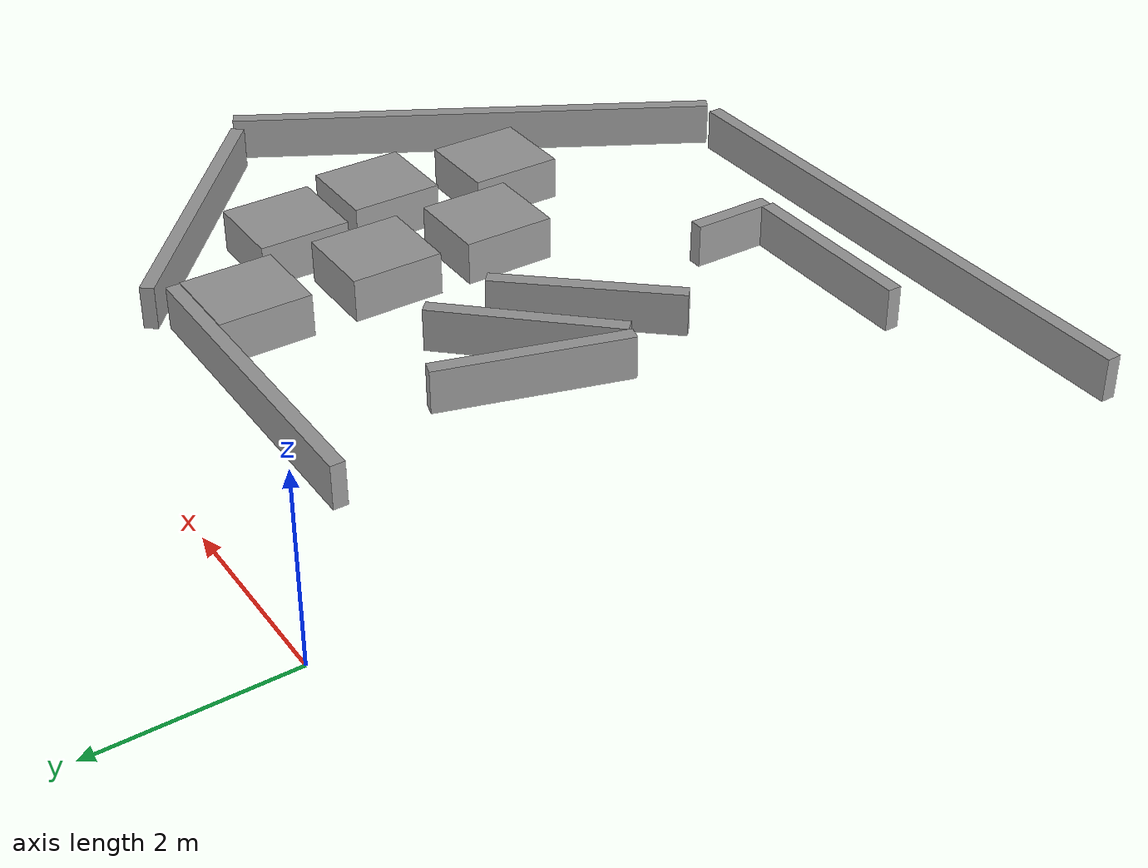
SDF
<sdf version="1.6">
 <model name="ws18_amr_master">
  <link name="link_0_clone_1_clone_clone_0">
   <pose>7.62136 -6.28425 -0 -0 -0 -0.508443</pose>
   <inertial>
    <mass>0.4862</mass>
    <inertia><ixx>1.4177</ixx><ixy>0</ixy><ixz>0</ixz><iyy>0.0114507</iyy><iyz>0</iyz><izz>1.40841</izz></inertia>
   </inertial>
   <visual name="visual">
    <geometry><box><size>0.163038 5.89361 0.505999</size></box></geometry>
    <material>
     <lighting>1</lighting>
     <script><uri>file://media/materials/scripts/gazebo.material</uri><name>Gazebo/Grey</name></script>
     <ambient>0.3 0.3 0.3 1</ambient>
     <diffuse>0.7 0.7 0.7 1</diffuse>
     <specular>0.01 0.01 0.01 1</specular>
     <emissive>0 0 0 1</emissive>
     <shader type="pixel"/>
    </material>
   </visual>
   <collision name="collision">
    <geometry><box><size>0.163038 5.89361 0.505999</size></box></geometry>
    <surface>
     <friction>
      <ode><mu>1</mu><mu2>1</mu2><fdir1>0 0 0</fdir1><slip1>0</slip1><slip2>0</slip2></ode>
      <torsional>
       <coefficient>1</coefficient>
       <patch_radius>0</patch_radius>
       <surface_radius>0</surface_radius>
       <use_patch_radius>1</use_patch_radius>
       <ode><slip>0</slip></ode>
      </torsional>
     </friction>
     <bounce><restitution_coefficient>0</restitution_coefficient><threshold>1e+06</threshold></bounce>
     <contact>
      <collide_without_contact>0</collide_without_contact>
      <collide_without_contact_bitmask>1</collide_without_contact_bitmask>
      <collide_bitmask>1</collide_bitmask>
      <ode>
       <soft_cfm>0</soft_cfm>
       <soft_erp>0.2</soft_erp>
       <kp>1e+13</kp>
       <kd>1</kd>
       <max_vel>0.01</max_vel>
       <min_depth>0</min_depth>
      </ode>
      <bullet>
       <split_impulse>1</split_impulse>
       <split_impulse_penetration_threshold>-0.01</split_impulse_penetration_threshold>
       <soft_cfm>0</soft_cfm>
       <soft_erp>0.2</soft_erp>
       <kp>1e+13</kp>
       <kd>1</kd>
      </bullet>
     </contact>
    </surface>
   </collision>
  </link>
  <link name="link_0_clone_1_clone_clone_clone">
   <pose>7.32668 -2.40651 -0 0 0 -2.27698</pose>
   <inertial>
    <mass>0.311198</mass>
    <inertia>
     <ixx>0.375669</ixx>
     <ixy>0</ixy>
     <ixz>0</ixz>
     <iyy>0.00732913</iyy>
     <iyz>0</iyz>
     <izz>0.369718</izz>
    </inertia>
   </inertial>
   <visual name="visual">
    <geometry><box><size>0.163038 3.77227 0.505999</size></box></geometry>
    <material>
     <lighting>1</lighting>
     <script><uri>file://media/materials/scripts/gazebo.material</uri><name>Gazebo/Grey</name></script>
     <ambient>0.3 0.3 0.3 1</ambient>
     <diffuse>0.7 0.7 0.7 1</diffuse>
     <specular>0.01 0.01 0.01 1</specular>
     <emissive>0 0 0 1</emissive>
     <shader type="pixel"/>
    </material>
   </visual>
   <collision name="collision">
    <geometry><box><size>0.163038 3.77227 0.505999</size></box></geometry>
    <surface>
     <friction>
      <ode><mu>1</mu><mu2>1</mu2><fdir1>0 0 0</fdir1><slip1>0</slip1><slip2>0</slip2></ode>
      <torsional>
       <coefficient>1</coefficient>
       <patch_radius>0</patch_radius>
       <surface_radius>0</surface_radius>
       <use_patch_radius>1</use_patch_radius>
       <ode><slip>0</slip></ode>
      </torsional>
     </friction>
     <bounce><restitution_coefficient>0</restitution_coefficient><threshold>1e+06</threshold></bounce>
     <contact>
      <collide_without_contact>0</collide_without_contact>
      <collide_without_contact_bitmask>1</collide_without_contact_bitmask>
      <collide_bitmask>1</collide_bitmask>
      <ode>
       <soft_cfm>0</soft_cfm>
       <soft_erp>0.2</soft_erp>
       <kp>1e+13</kp>
       <kd>1</kd>
       <max_vel>0.01</max_vel>
       <min_depth>0</min_depth>
      </ode>
      <bullet>
       <split_impulse>1</split_impulse>
       <split_impulse_penetration_threshold>-0.01</split_impulse_penetration_threshold>
       <soft_cfm>0</soft_cfm>
       <soft_erp>0.2</soft_erp>
       <kp>1e+13</kp>
       <kd>1</kd>
      </bullet>
     </contact>
    </surface>
   </collision>
  </link>
  <link name="link_0_clone_2_clone_0">
   <pose>3.79092 -7.37969 -0 0 -0 0</pose>
   <inertial>
    <mass>0.0824965</mass>
    <inertia>
     <ixx>0.00863488</ixx>
     <ixy>0</ixy>
     <ixz>0</ixz>
     <iyy>0.0019429</iyy>
     <iyz>0</iyz>
     <izz>0.00705746</izz>
    </inertia>
   </inertial>
   <visual name="visual">
    <geometry><box><size>0.163038 1 0.505999</size></box></geometry>
    <material>
     <lighting>1</lighting>
     <script><uri>file://media/materials/scripts/gazebo.material</uri><name>Gazebo/Grey</name></script>
     <ambient>0.3 0.3 0.3 1</ambient>
     <diffuse>0.7 0.7 0.7 1</diffuse>
     <specular>0.01 0.01 0.01 1</specular>
     <emissive>0 0 0 1</emissive>
     <shader type="pixel"/>
    </material>
   </visual>
   <collision name="collision">
    <geometry><box><size>0.163038 1 0.505999</size></box></geometry>
    <surface>
     <friction>
      <ode><mu>1</mu><mu2>1</mu2><fdir1>0 0 0</fdir1><slip1>0</slip1><slip2>0</slip2></ode>
      <torsional>
       <coefficient>1</coefficient>
       <patch_radius>0</patch_radius>
       <surface_radius>0</surface_radius>
       <use_patch_radius>1</use_patch_radius>
       <ode><slip>0</slip></ode>
      </torsional>
     </friction>
     <bounce><restitution_coefficient>0</restitution_coefficient><threshold>1e+06</threshold></bounce>
     <contact>
      <collide_without_contact>0</collide_without_contact>
      <collide_without_contact_bitmask>1</collide_without_contact_bitmask>
      <collide_bitmask>1</collide_bitmask>
      <ode>
       <soft_cfm>0</soft_cfm>
       <soft_erp>0.2</soft_erp>
       <kp>1e+13</kp>
       <kd>1</kd>
       <max_vel>0.01</max_vel>
       <min_depth>0</min_depth>
      </ode>
      <bullet>
       <split_impulse>1</split_impulse>
       <split_impulse_penetration_threshold>-0.01</split_impulse_penetration_threshold>
       <soft_cfm>0</soft_cfm>
       <soft_erp>0.2</soft_erp>
       <kp>1e+13</kp>
       <kd>1</kd>
      </bullet>
     </contact>
    </surface>
   </collision>
  </link>
  <link name="link_0_clone_clone_1_clone">
   <pose>2.64933 -8.78868 -8.7e-05 0 0.012172 1.55915</pose>
   <inertial>
    <mass>0.549374</mass>
    <inertia>
     <ixx>2.04199</ixx>
     <ixy>0</ixy>
     <ixz>0</ixz>
     <iyy>0.0129385</iyy>
     <iyz>0</iyz>
     <izz>2.03149</izz>
    </inertia>
   </inertial>
   <visual name="visual">
    <geometry><box><size>0.163038 6.65939 0.505999</size></box></geometry>
    <material>
     <lighting>1</lighting>
     <script><uri>file://media/materials/scripts/gazebo.material</uri><name>Gazebo/Grey</name></script>
     <ambient>0.3 0.3 0.3 1</ambient>
     <diffuse>0.7 0.7 0.7 1</diffuse>
     <specular>0.01 0.01 0.01 1</specular>
     <emissive>0 0 0 1</emissive>
     <shader type="pixel"/>
    </material>
   </visual>
   <collision name="collision">
    <geometry><box><size>0.163038 6.65939 0.505999</size></box></geometry>
    <surface>
     <friction>
      <ode><mu>1</mu><mu2>1</mu2><fdir1>0 0 0</fdir1><slip1>0</slip1><slip2>0</slip2></ode>
      <torsional>
       <coefficient>1</coefficient>
       <patch_radius>0</patch_radius>
       <surface_radius>0</surface_radius>
       <use_patch_radius>1</use_patch_radius>
       <ode><slip>0</slip></ode>
      </torsional>
     </friction>
     <bounce><restitution_coefficient>0</restitution_coefficient><threshold>1e+06</threshold></bounce>
     <contact>
      <collide_without_contact>0</collide_without_contact>
      <collide_without_contact_bitmask>1</collide_without_contact_bitmask>
      <collide_bitmask>1</collide_bitmask>
      <ode>
       <soft_cfm>0</soft_cfm>
       <soft_erp>0.2</soft_erp>
       <kp>1e+13</kp>
       <kd>1</kd>
       <max_vel>0.01</max_vel>
       <min_depth>0</min_depth>
      </ode>
      <bullet>
       <split_impulse>1</split_impulse>
       <split_impulse_penetration_threshold>-0.01</split_impulse_penetration_threshold>
       <soft_cfm>0</soft_cfm>
       <soft_erp>0.2</soft_erp>
       <kp>1e+13</kp>
       <kd>1</kd>
      </bullet>
     </contact>
    </surface>
   </collision>
  </link>
  <link name="link_0_clone_clone_1_clone_0">
   <pose>3.39746 -5.13705 9.6e-05 0.009103 0.00808 2.40401</pose>
   <inertial>
    <mass>0.180006</mass>
    <inertia>
     <ixx>0.0752589</ixx>
     <ixy>0</ixy>
     <ixz>0</ixz>
     <iyy>0.00423938</iyy>
     <iyz>0</iyz>
     <izz>0.071817</izz>
    </inertia>
   </inertial>
   <visual name="visual">
    <geometry><box><size>0.163038 2.18199 0.505999</size></box></geometry>
    <material>
     <lighting>1</lighting>
     <script><uri>file://media/materials/scripts/gazebo.material</uri><name>Gazebo/Grey</name></script>
     <ambient>0.3 0.3 0.3 1</ambient>
     <diffuse>0.7 0.7 0.7 1</diffuse>
     <specular>0.01 0.01 0.01 1</specular>
     <emissive>0 0 0 1</emissive>
     <shader type="pixel"/>
    </material>
   </visual>
   <collision name="collision">
    <geometry><box><size>0.163038 2.18199 0.505999</size></box></geometry>
    <surface>
     <friction>
      <ode><mu>1</mu><mu2>1</mu2><fdir1>0 0 0</fdir1><slip1>0</slip1><slip2>0</slip2></ode>
      <torsional>
       <coefficient>1</coefficient>
       <patch_radius>0</patch_radius>
       <surface_radius>0</surface_radius>
       <use_patch_radius>1</use_patch_radius>
       <ode><slip>0</slip></ode>
      </torsional>
     </friction>
     <bounce><restitution_coefficient>0</restitution_coefficient><threshold>1e+06</threshold></bounce>
     <contact>
      <collide_without_contact>0</collide_without_contact>
      <collide_without_contact_bitmask>1</collide_without_contact_bitmask>
      <collide_bitmask>1</collide_bitmask>
      <ode>
       <soft_cfm>0</soft_cfm>
       <soft_erp>0.2</soft_erp>
       <kp>1e+13</kp>
       <kd>1</kd>
       <max_vel>0.01</max_vel>
       <min_depth>0</min_depth>
      </ode>
      <bullet>
       <split_impulse>1</split_impulse>
       <split_impulse_penetration_threshold>-0.01</split_impulse_penetration_threshold>
       <soft_cfm>0</soft_cfm>
       <soft_erp>0.2</soft_erp>
       <kp>1e+13</kp>
       <kd>1</kd>
      </bullet>
     </contact>
    </surface>
   </collision>
  </link>
  <link name="link_0_clone_clone_1_clone_1">
   <pose>3.2263 -4.25366 -8.7e-05 0.008831 0.008377 2.37089</pose>
   <inertial>
    <mass>0.180006</mass>
    <inertia>
     <ixx>0.0752589</ixx>
     <ixy>0</ixy>
     <ixz>0</ixz>
     <iyy>0.00423938</iyy>
     <iyz>0</iyz>
     <izz>0.071817</izz>
    </inertia>
   </inertial>
   <visual name="visual">
    <geometry><box><size>0.163038 2.18199 0.505999</size></box></geometry>
    <material>
     <lighting>1</lighting>
     <script><uri>file://media/materials/scripts/gazebo.material</uri><name>Gazebo/Grey</name></script>
     <ambient>0.3 0.3 0.3 1</ambient>
     <diffuse>0.7 0.7 0.7 1</diffuse>
     <specular>0.01 0.01 0.01 1</specular>
     <emissive>0 0 0 1</emissive>
     <shader type="pixel"><normal_map>__default__</normal_map></shader>
    </material>
   </visual>
   <collision name="collision">
    <geometry><box><size>0.163038 2.18199 0.505999</size></box></geometry>
    <surface>
     <friction>
      <ode><mu>1</mu><mu2>1</mu2><fdir1>0 0 0</fdir1><slip1>0</slip1><slip2>0</slip2></ode>
      <torsional>
       <coefficient>1</coefficient>
       <patch_radius>0</patch_radius>
       <surface_radius>0</surface_radius>
       <use_patch_radius>1</use_patch_radius>
       <ode><slip>0</slip></ode>
      </torsional>
     </friction>
     <bounce><restitution_coefficient>0</restitution_coefficient><threshold>1e+06</threshold></bounce>
     <contact>
      <collide_without_contact>0</collide_without_contact>
      <collide_without_contact_bitmask>1</collide_without_contact_bitmask>
      <collide_bitmask>1</collide_bitmask>
      <ode>
       <soft_cfm>0</soft_cfm>
       <soft_erp>0.2</soft_erp>
       <kp>1e+13</kp>
       <kd>1</kd>
       <max_vel>0.01</max_vel>
       <min_depth>0</min_depth>
      </ode>
      <bullet>
       <split_impulse>1</split_impulse>
       <split_impulse_penetration_threshold>-0.01</split_impulse_penetration_threshold>
       <soft_cfm>0</soft_cfm>
       <soft_erp>0.2</soft_erp>
       <kp>1e+13</kp>
       <kd>1</kd>
      </bullet>
     </contact>
    </surface>
   </collision>
  </link>
  <link name="link_0_clone_clone_1_clone_1_clone">
   <pose>2.6406 -3.9519 -0.000942 0.011674 0.003446 2.84292</pose>
   <inertial>
    <mass>0.180006</mass>
    <inertia>
     <ixx>0.0752589</ixx>
     <ixy>0</ixy>
     <ixz>0</ixz>
     <iyy>0.00423938</iyy>
     <iyz>0</iyz>
     <izz>0.071817</izz>
    </inertia>
   </inertial>
   <visual name="visual">
    <geometry><box><size>0.163038 2.18199 0.505999</size></box></geometry>
    <material>
     <lighting>1</lighting>
     <script><uri>file://media/materials/scripts/gazebo.material</uri><name>Gazebo/Grey</name></script>
     <ambient>0.3 0.3 0.3 1</ambient>
     <diffuse>0.7 0.7 0.7 1</diffuse>
     <specular>0.01 0.01 0.01 1</specular>
     <emissive>0 0 0 1</emissive>
     <shader type="pixel"><normal_map>__default__</normal_map></shader>
    </material>
   </visual>
   <collision name="collision">
    <geometry><box><size>0.163038 2.18199 0.505999</size></box></geometry>
    <surface>
     <friction>
      <ode><mu>1</mu><mu2>1</mu2><fdir1>0 0 0</fdir1><slip1>0</slip1><slip2>0</slip2></ode>
      <torsional>
       <coefficient>1</coefficient>
       <patch_radius>0</patch_radius>
       <surface_radius>0</surface_radius>
       <use_patch_radius>1</use_patch_radius>
       <ode><slip>0</slip></ode>
      </torsional>
     </friction>
     <bounce><restitution_coefficient>0</restitution_coefficient><threshold>1e+06</threshold></bounce>
     <contact>
      <collide_without_contact>0</collide_without_contact>
      <collide_without_contact_bitmask>1</collide_without_contact_bitmask>
      <collide_bitmask>1</collide_bitmask>
      <ode>
       <soft_cfm>0</soft_cfm>
       <soft_erp>0.2</soft_erp>
       <kp>1e+13</kp>
       <kd>1</kd>
       <max_vel>0.01</max_vel>
       <min_depth>0</min_depth>
      </ode>
      <bullet>
       <split_impulse>1</split_impulse>
       <split_impulse_penetration_threshold>-0.01</split_impulse_penetration_threshold>
       <soft_cfm>0</soft_cfm>
       <soft_erp>0.2</soft_erp>
       <kp>1e+13</kp>
       <kd>1</kd>
      </bullet>
     </contact>
    </surface>
   </collision>
  </link>
  <link name="link_0_clone_clone_1_clone_clone">
   <pose>3.90076 -1.41618 -8.7e-05 0 0.012172 1.55915</pose>
   <inertial>
    <mass>0.311334</mass>
    <inertia>
     <ixx>0.376156</ixx>
     <ixy>0</ixy>
     <ixz>0</ixz>
     <iyy>0.00733234</iyy>
     <iyz>0</iyz>
     <izz>0.370203</izz>
    </inertia>
   </inertial>
   <visual name="visual">
    <geometry><box><size>0.163038 3.77392 0.505999</size></box></geometry>
    <material>
     <lighting>1</lighting>
     <script><uri>file://media/materials/scripts/gazebo.material</uri><name>Gazebo/Grey</name></script>
     <ambient>0.3 0.3 0.3 1</ambient>
     <diffuse>0.7 0.7 0.7 1</diffuse>
     <specular>0.01 0.01 0.01 1</specular>
     <emissive>0 0 0 1</emissive>
     <shader type="pixel"/>
    </material>
   </visual>
   <collision name="collision">
    <geometry><box><size>0.163038 3.77392 0.505999</size></box></geometry>
    <surface>
     <friction>
      <ode><mu>1</mu><mu2>1</mu2><fdir1>0 0 0</fdir1><slip1>0</slip1><slip2>0</slip2></ode>
      <torsional>
       <coefficient>1</coefficient>
       <patch_radius>0</patch_radius>
       <surface_radius>0</surface_radius>
       <use_patch_radius>1</use_patch_radius>
       <ode><slip>0</slip></ode>
      </torsional>
     </friction>
     <bounce><restitution_coefficient>0</restitution_coefficient><threshold>1e+06</threshold></bounce>
     <contact>
      <collide_without_contact>0</collide_without_contact>
      <collide_without_contact_bitmask>1</collide_without_contact_bitmask>
      <collide_bitmask>1</collide_bitmask>
      <ode>
       <soft_cfm>0</soft_cfm>
       <soft_erp>0.2</soft_erp>
       <kp>1e+13</kp>
       <kd>1</kd>
       <max_vel>0.01</max_vel>
       <min_depth>0</min_depth>
      </ode>
      <bullet>
       <split_impulse>1</split_impulse>
       <split_impulse_penetration_threshold>-0.01</split_impulse_penetration_threshold>
       <soft_cfm>0</soft_cfm>
       <soft_erp>0.2</soft_erp>
       <kp>1e+13</kp>
       <kd>1</kd>
      </bullet>
     </contact>
    </surface>
   </collision>
  </link>
  <link name="link_0_clone_clone_2_clone">
   <pose>2.62302 -7.82667 -0.001264 0 0.012172 1.55915</pose>
   <inertial>
    <mass>0.180006</mass>
    <inertia>
     <ixx>0.0752589</ixx>
     <ixy>0</ixy>
     <ixz>0</ixz>
     <iyy>0.00423938</iyy>
     <iyz>0</iyz>
     <izz>0.071817</izz>
    </inertia>
   </inertial>
   <visual name="visual">
    <geometry><box><size>0.163038 2.18199 0.505999</size></box></geometry>
    <material>
     <lighting>1</lighting>
     <script><uri>file://media/materials/scripts/gazebo.material</uri><name>Gazebo/Grey</name></script>
     <ambient>0.3 0.3 0.3 1</ambient>
     <diffuse>0.7 0.7 0.7 1</diffuse>
     <specular>0.01 0.01 0.01 1</specular>
     <emissive>0 0 0 1</emissive>
     <shader type="pixel"/>
    </material>
   </visual>
   <collision name="collision">
    <geometry><box><size>0.163038 2.18199 0.505999</size></box></geometry>
    <surface>
     <friction>
      <ode><mu>1</mu><mu2>1</mu2><fdir1>0 0 0</fdir1><slip1>0</slip1><slip2>0</slip2></ode>
      <torsional>
       <coefficient>1</coefficient>
       <patch_radius>0</patch_radius>
       <surface_radius>0</surface_radius>
       <use_patch_radius>1</use_patch_radius>
       <ode><slip>0</slip></ode>
      </torsional>
     </friction>
     <bounce><restitution_coefficient>0</restitution_coefficient><threshold>1e+06</threshold></bounce>
     <contact>
      <collide_without_contact>0</collide_without_contact>
      <collide_without_contact_bitmask>1</collide_without_contact_bitmask>
      <collide_bitmask>1</collide_bitmask>
      <ode>
       <soft_cfm>0</soft_cfm>
       <soft_erp>0.2</soft_erp>
       <kp>1e+13</kp>
       <kd>1</kd>
       <max_vel>0.01</max_vel>
       <min_depth>0</min_depth>
      </ode>
      <bullet>
       <split_impulse>1</split_impulse>
       <split_impulse_penetration_threshold>-0.01</split_impulse_penetration_threshold>
       <soft_cfm>0</soft_cfm>
       <soft_erp>0.2</soft_erp>
       <kp>1e+13</kp>
       <kd>1</kd>
      </bullet>
     </contact>
    </surface>
   </collision>
  </link>
  <link name="link_0_clone_clone_clone_clone_clone_0">
   <pose>6.44374 -3.10496 0.018209 0 0.012172 1.55915</pose>
   <inertial>
    <mass>0.539493</mass>
    <inertia>
     <ixx>0.0564686</ixx>
     <ixy>0</ixy>
     <ixz>0</ixz>
     <iyy>0.0626183</iyy>
     <iyz>0</iyz>
     <izz>0.0960654</izz>
    </inertia>
   </inertial>
   <visual name="visual">
    <geometry><box><size>1.0662 1 0.505999</size></box></geometry>
    <material>
     <lighting>1</lighting>
     <script><uri>file://media/materials/scripts/gazebo.material</uri><name>Gazebo/Grey</name></script>
     <ambient>0.3 0.3 0.3 1</ambient>
     <diffuse>0.7 0.7 0.7 1</diffuse>
     <specular>0.01 0.01 0.01 1</specular>
     <emissive>0 0 0 1</emissive>
     <shader type="pixel"/>
    </material>
   </visual>
   <collision name="collision">
    <geometry><box><size>1.0662 1 0.505999</size></box></geometry>
    <surface>
     <friction>
      <ode><mu>1</mu><mu2>1</mu2><fdir1>0 0 0</fdir1><slip1>0</slip1><slip2>0</slip2></ode>
      <torsional>
       <coefficient>1</coefficient>
       <patch_radius>0</patch_radius>
       <surface_radius>0</surface_radius>
       <use_patch_radius>1</use_patch_radius>
       <ode><slip>0</slip></ode>
      </torsional>
     </friction>
     <bounce><restitution_coefficient>0</restitution_coefficient><threshold>1e+06</threshold></bounce>
     <contact>
      <collide_without_contact>0</collide_without_contact>
      <collide_without_contact_bitmask>1</collide_without_contact_bitmask>
      <collide_bitmask>1</collide_bitmask>
      <ode>
       <soft_cfm>0</soft_cfm>
       <soft_erp>0.2</soft_erp>
       <kp>1e+13</kp>
       <kd>1</kd>
       <max_vel>0.01</max_vel>
       <min_depth>0</min_depth>
      </ode>
      <bullet>
       <split_impulse>1</split_impulse>
       <split_impulse_penetration_threshold>-0.01</split_impulse_penetration_threshold>
       <soft_cfm>0</soft_cfm>
       <soft_erp>0.2</soft_erp>
       <kp>1e+13</kp>
       <kd>1</kd>
      </bullet>
     </contact>
    </surface>
   </collision>
  </link>
  <link name="link_0_clone_clone_clone_clone_clone_1">
   <pose>6.64074 -4.38563 0.018209 0 0.012172 1.55915</pose>
   <inertial>
    <mass>0.539493</mass>
    <inertia>
     <ixx>0.0564686</ixx>
     <ixy>0</ixy>
     <ixz>0</ixz>
     <iyy>0.0626183</iyy>
     <iyz>0</iyz>
     <izz>0.0960654</izz>
    </inertia>
   </inertial>
   <visual name="visual">
    <geometry><box><size>1.0662 1 0.505999</size></box></geometry>
    <material>
     <lighting>1</lighting>
     <script><uri>file://media/materials/scripts/gazebo.material</uri><name>Gazebo/Grey</name></script>
     <ambient>0.3 0.3 0.3 1</ambient>
     <diffuse>0.7 0.7 0.7 1</diffuse>
     <specular>0.01 0.01 0.01 1</specular>
     <emissive>0 0 0 1</emissive>
     <shader type="pixel"/>
    </material>
   </visual>
   <collision name="collision">
    <geometry><box><size>1.0662 1 0.505999</size></box></geometry>
    <surface>
     <friction>
      <ode><mu>1</mu><mu2>1</mu2><fdir1>0 0 0</fdir1><slip1>0</slip1><slip2>0</slip2></ode>
      <torsional>
       <coefficient>1</coefficient>
       <patch_radius>0</patch_radius>
       <surface_radius>0</surface_radius>
       <use_patch_radius>1</use_patch_radius>
       <ode><slip>0</slip></ode>
      </torsional>
     </friction>
     <bounce><restitution_coefficient>0</restitution_coefficient><threshold>1e+06</threshold></bounce>
     <contact>
      <collide_without_contact>0</collide_without_contact>
      <collide_without_contact_bitmask>1</collide_without_contact_bitmask>
      <collide_bitmask>1</collide_bitmask>
      <ode>
       <soft_cfm>0</soft_cfm>
       <soft_erp>0.2</soft_erp>
       <kp>1e+13</kp>
       <kd>1</kd>
       <max_vel>0.01</max_vel>
       <min_depth>0</min_depth>
      </ode>
      <bullet>
       <split_impulse>1</split_impulse>
       <split_impulse_penetration_threshold>-0.01</split_impulse_penetration_threshold>
       <soft_cfm>0</soft_cfm>
       <soft_erp>0.2</soft_erp>
       <kp>1e+13</kp>
       <kd>1</kd>
      </bullet>
     </contact>
    </surface>
   </collision>
  </link>
  <link name="link_0_clone_clone_clone_clone_clone_2">
   <pose>6.44495 -5.88357 0.018209 0 0.012172 1.55915</pose>
   <inertial>
    <mass>0.539493</mass>
    <inertia>
     <ixx>0.0564686</ixx>
     <ixy>0</ixy>
     <ixz>0</ixz>
     <iyy>0.0626183</iyy>
     <iyz>0</iyz>
     <izz>0.0960654</izz>
    </inertia>
   </inertial>
   <visual name="visual">
    <geometry><box><size>1.0662 1 0.505999</size></box></geometry>
    <material>
     <lighting>1</lighting>
     <script><uri>file://media/materials/scripts/gazebo.material</uri><name>Gazebo/Grey</name></script>
     <ambient>0.3 0.3 0.3 1</ambient>
     <diffuse>0.7 0.7 0.7 1</diffuse>
     <specular>0.01 0.01 0.01 1</specular>
     <emissive>0 0 0 1</emissive>
     <shader type="pixel"/>
    </material>
   </visual>
   <collision name="collision">
    <geometry><box><size>1.0662 1 0.505999</size></box></geometry>
    <surface>
     <friction>
      <ode><mu>1</mu><mu2>1</mu2><fdir1>0 0 0</fdir1><slip1>0</slip1><slip2>0</slip2></ode>
      <torsional>
       <coefficient>1</coefficient>
       <patch_radius>0</patch_radius>
       <surface_radius>0</surface_radius>
       <use_patch_radius>1</use_patch_radius>
       <ode><slip>0</slip></ode>
      </torsional>
     </friction>
     <bounce><restitution_coefficient>0</restitution_coefficient><threshold>1e+06</threshold></bounce>
     <contact>
      <collide_without_contact>0</collide_without_contact>
      <collide_without_contact_bitmask>1</collide_without_contact_bitmask>
      <collide_bitmask>1</collide_bitmask>
      <ode>
       <soft_cfm>0</soft_cfm>
       <soft_erp>0.2</soft_erp>
       <kp>1e+13</kp>
       <kd>1</kd>
       <max_vel>0.01</max_vel>
       <min_depth>0</min_depth>
      </ode>
      <bullet>
       <split_impulse>1</split_impulse>
       <split_impulse_penetration_threshold>-0.01</split_impulse_penetration_threshold>
       <soft_cfm>0</soft_cfm>
       <soft_erp>0.2</soft_erp>
       <kp>1e+13</kp>
       <kd>1</kd>
      </bullet>
     </contact>
    </surface>
   </collision>
  </link>
  <link name="link_0_clone_clone_clone_clone_clone_3_clone">
   <pose>5.27738 -5.04493 0.018209 0 0.012172 1.55915</pose>
   <inertial>
    <mass>0.539493</mass>
    <inertia>
     <ixx>0.0564686</ixx>
     <ixy>0</ixy>
     <ixz>0</ixz>
     <iyy>0.0626183</iyy>
     <iyz>0</iyz>
     <izz>0.0960654</izz>
    </inertia>
   </inertial>
   <visual name="visual">
    <geometry><box><size>1.0662 1 0.505999</size></box></geometry>
    <material>
     <lighting>1</lighting>
     <script><uri>file://media/materials/scripts/gazebo.material</uri><name>Gazebo/Grey</name></script>
     <ambient>0.3 0.3 0.3 1</ambient>
     <diffuse>0.7 0.7 0.7 1</diffuse>
     <specular>0.01 0.01 0.01 1</specular>
     <emissive>0 0 0 1</emissive>
     <shader type="pixel"/>
    </material>
   </visual>
   <collision name="collision">
    <geometry><box><size>1.0662 1 0.505999</size></box></geometry>
    <surface>
     <friction>
      <ode><mu>1</mu><mu2>1</mu2><fdir1>0 0 0</fdir1><slip1>0</slip1><slip2>0</slip2></ode>
      <torsional>
       <coefficient>1</coefficient>
       <patch_radius>0</patch_radius>
       <surface_radius>0</surface_radius>
       <use_patch_radius>1</use_patch_radius>
       <ode><slip>0</slip></ode>
      </torsional>
     </friction>
     <bounce><restitution_coefficient>0</restitution_coefficient><threshold>1e+06</threshold></bounce>
     <contact>
      <collide_without_contact>0</collide_without_contact>
      <collide_without_contact_bitmask>1</collide_without_contact_bitmask>
      <collide_bitmask>1</collide_bitmask>
      <ode>
       <soft_cfm>0</soft_cfm>
       <soft_erp>0.2</soft_erp>
       <kp>1e+13</kp>
       <kd>1</kd>
       <max_vel>0.01</max_vel>
       <min_depth>0</min_depth>
      </ode>
      <bullet>
       <split_impulse>1</split_impulse>
       <split_impulse_penetration_threshold>-0.01</split_impulse_penetration_threshold>
       <soft_cfm>0</soft_cfm>
       <soft_erp>0.2</soft_erp>
       <kp>1e+13</kp>
       <kd>1</kd>
      </bullet>
     </contact>
    </surface>
   </collision>
  </link>
  <link name="link_0_clone_clone_clone_clone_clone_3_clone_clone">
   <pose>5.27738 -3.61782 0.018209 0 0.012172 1.55915</pose>
   <inertial>
    <mass>0.539493</mass>
    <inertia>
     <ixx>0.0564686</ixx>
     <ixy>0</ixy>
     <ixz>0</ixz>
     <iyy>0.0626183</iyy>
     <iyz>0</iyz>
     <izz>0.0960654</izz>
    </inertia>
   </inertial>
   <visual name="visual">
    <geometry><box><size>1.0662 1 0.505999</size></box></geometry>
    <material>
     <lighting>1</lighting>
     <script><uri>file://media/materials/scripts/gazebo.material</uri><name>Gazebo/Grey</name></script>
     <ambient>0.3 0.3 0.3 1</ambient>
     <diffuse>0.7 0.7 0.7 1</diffuse>
     <specular>0.01 0.01 0.01 1</specular>
     <emissive>0 0 0 1</emissive>
     <shader type="pixel"/>
    </material>
   </visual>
   <collision name="collision">
    <geometry><box><size>1.0662 1 0.505999</size></box></geometry>
    <surface>
     <friction>
      <ode><mu>1</mu><mu2>1</mu2><fdir1>0 0 0</fdir1><slip1>0</slip1><slip2>0</slip2></ode>
      <torsional>
       <coefficient>1</coefficient>
       <patch_radius>0</patch_radius>
       <surface_radius>0</surface_radius>
       <use_patch_radius>1</use_patch_radius>
       <ode><slip>0</slip></ode>
      </torsional>
     </friction>
     <bounce><restitution_coefficient>0</restitution_coefficient><threshold>1e+06</threshold></bounce>
     <contact>
      <collide_without_contact>0</collide_without_contact>
      <collide_without_contact_bitmask>1</collide_without_contact_bitmask>
      <collide_bitmask>1</collide_bitmask>
      <ode>
       <soft_cfm>0</soft_cfm>
       <soft_erp>0.2</soft_erp>
       <kp>1e+13</kp>
       <kd>1</kd>
       <max_vel>0.01</max_vel>
       <min_depth>0</min_depth>
      </ode>
      <bullet>
       <split_impulse>1</split_impulse>
       <split_impulse_penetration_threshold>-0.01</split_impulse_penetration_threshold>
       <soft_cfm>0</soft_cfm>
       <soft_erp>0.2</soft_erp>
       <kp>1e+13</kp>
       <kd>1</kd>
      </bullet>
     </contact>
    </surface>
   </collision>
  </link>
  <link name="link_0_clone_clone_clone_clone_clone_3_clone_clone_clone">
   <pose>5.27738 -2.04493 0.018209 0 0.012172 1.55915</pose>
   <inertial>
    <mass>0.539493</mass>
    <inertia>
     <ixx>0.0564686</ixx>
     <ixy>0</ixy>
     <ixz>0</ixz>
     <iyy>0.0626183</iyy>
     <iyz>0</iyz>
     <izz>0.0960654</izz>
    </inertia>
   </inertial>
   <visual name="visual">
    <geometry><box><size>1.0662 1 0.505999</size></box></geometry>
    <material>
     <lighting>1</lighting>
     <script><uri>file://media/materials/scripts/gazebo.material</uri><name>Gazebo/Grey</name></script>
     <ambient>0.3 0.3 0.3 1</ambient>
     <diffuse>0.7 0.7 0.7 1</diffuse>
     <specular>0.01 0.01 0.01 1</specular>
     <emissive>0 0 0 1</emissive>
     <shader type="pixel"/>
    </material>
   </visual>
   <collision name="collision">
    <geometry><box><size>1.0662 1 0.505999</size></box></geometry>
    <surface>
     <friction>
      <ode><mu>1</mu><mu2>1</mu2><fdir1>0 0 0</fdir1><slip1>0</slip1><slip2>0</slip2></ode>
      <torsional>
       <coefficient>1</coefficient>
       <patch_radius>0</patch_radius>
       <surface_radius>0</surface_radius>
       <use_patch_radius>1</use_patch_radius>
       <ode><slip>0</slip></ode>
      </torsional>
     </friction>
     <bounce><restitution_coefficient>0</restitution_coefficient><threshold>1e+06</threshold></bounce>
     <contact>
      <collide_without_contact>0</collide_without_contact>
      <collide_without_contact_bitmask>1</collide_without_contact_bitmask>
      <collide_bitmask>1</collide_bitmask>
      <ode>
       <soft_cfm>0</soft_cfm>
       <soft_erp>0.2</soft_erp>
       <kp>1e+13</kp>
       <kd>1</kd>
       <max_vel>0.01</max_vel>
       <min_depth>0</min_depth>
      </ode>
      <bullet>
       <split_impulse>1</split_impulse>
       <split_impulse_penetration_threshold>-0.01</split_impulse_penetration_threshold>
       <soft_cfm>0</soft_cfm>
       <soft_erp>0.2</soft_erp>
       <kp>1e+13</kp>
       <kd>1</kd>
      </bullet>
     </contact>
    </surface>
   </collision>
  </link>
  <static>1</static>
 </model>
</sdf>
